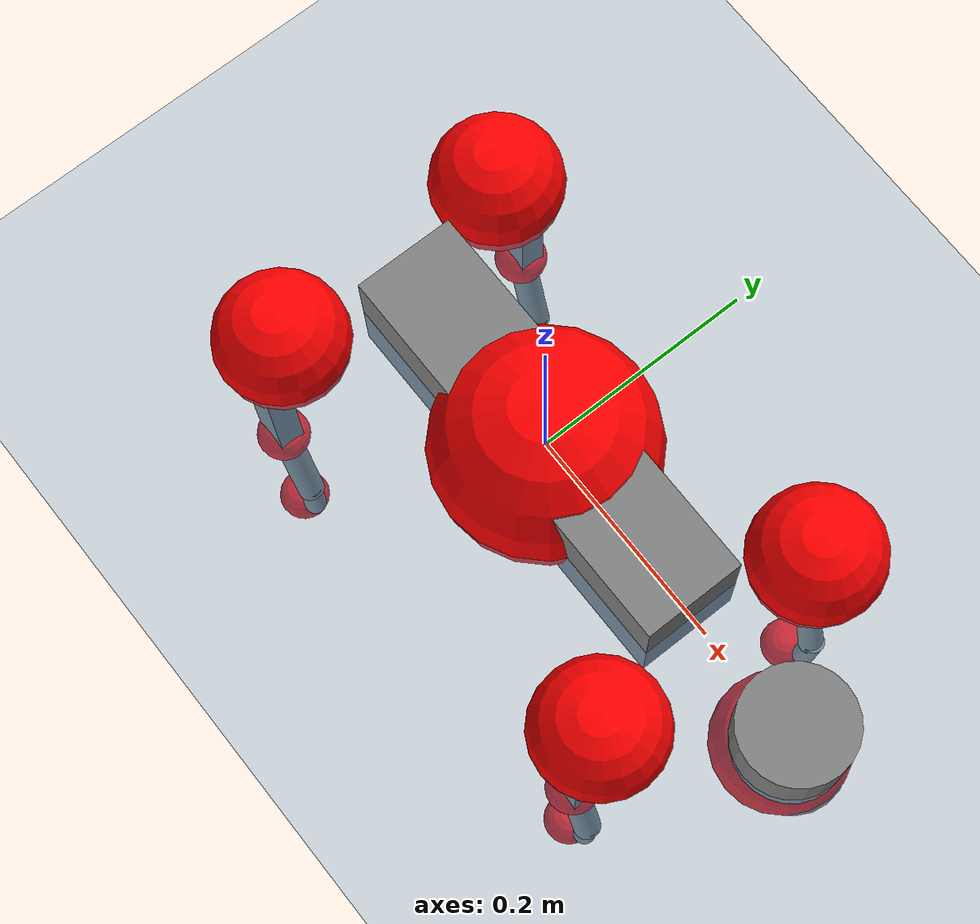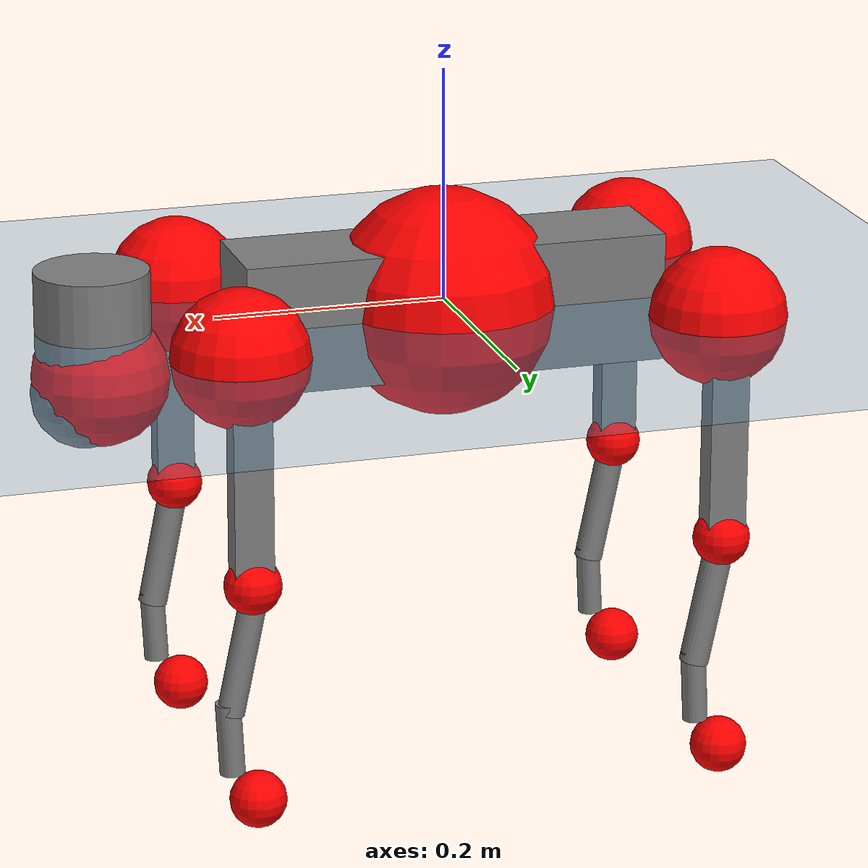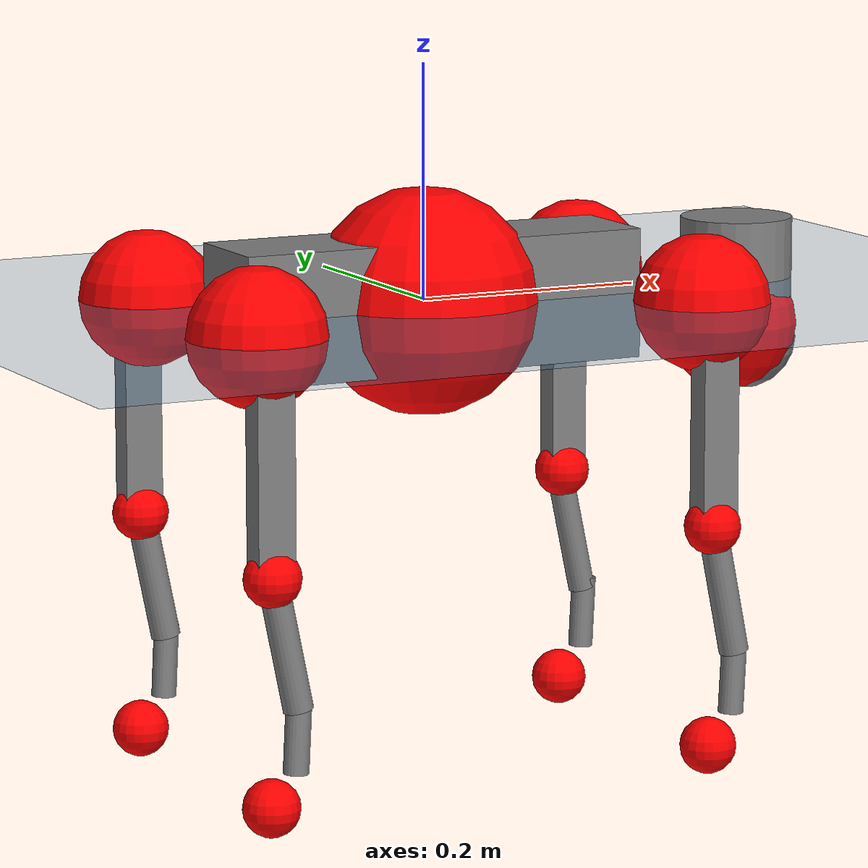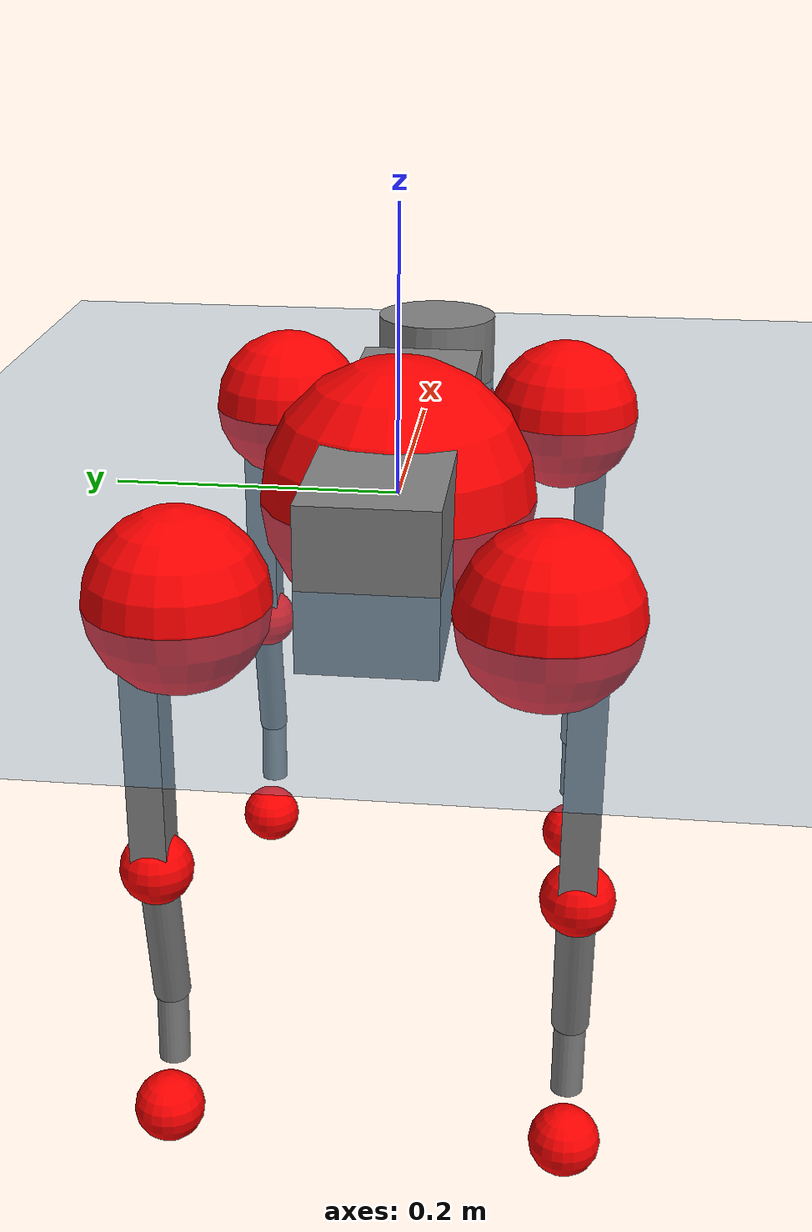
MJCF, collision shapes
<mujoco model="go2">
  <compiler angle="radian" assetdir="assets" balanceinertia="true" inertiafromgeom="false"/>

  <option timestep="0.005" density="1.2" viscosity="2e-05"/>

  <size nkey="1"/>

  <visual>
    <quality shadowsize="8192"/>
    <map shadowclip="0.5"/>
  </visual>

  <default>
    <default class="/">
      <geom contype="0" conaffinity="0" group="1" solref="-1000 -80"/>
      <site size="0.01 0.005 0.005" group="5"/>
      <general forcelimited="true" biastype="affine" gainprm="20" biasprm="0 -20 -0.5"/>
      <default class="go2">
        <joint armature="0.01" damping="0.01" frictionloss="0.2"/>
        <geom condim="1" margin="0.001"/>
        <default class="visual">
          <geom type="mesh" group="2"/>
        </default>
        <default class="collision">
          <geom group="3"/>
          <default class="foot">
            <geom size="0.022 0 0" condim="6" priority="1" friction="0.8 0.02 0.01" solimp="0.015 1 0.022"/>
          </default>
        </default>
        <default class="reward_collision_sphere">
          <geom group="5" rgba="1 0 0 1"/>
        </default>
      </default>
    </default>
  </default>

  <asset>
    <texture type="skybox" colorspace="auto" name="//unnamed_texture_0" builtin="gradient" rgb1="0.95 0.95 0.95" rgb2="0.95 0.95 0.95" width="100" height="600"/>
    <texture type="2d" colorspace="auto" name="texplane" builtin="checker" rgb1="0.345 0.575 0.748" rgb2="0.345 0.575 0.748" markrgb="1 1 1" width="512" height="512"/>
    <material name="MatPlane" class="/" texture="texplane" texuniform="true" texrepeat="2 2" specular="0.9"/>
    <material name="metal" class="/" rgba="0.9 0.95 0.95 1"/>
    <material name="black" class="/" rgba="0 0 0 1"/>
    <material name="white" class="/"/>
    <material name="gray" class="/" rgba="0.671705 0.692426 0.77427 1"/>
    <mesh name="base_0" class="/" file="base_0.obj"/>
    <mesh name="base_1" class="/" file="base_1.obj"/>
    <mesh name="base_2" class="/" file="base_2.obj"/>
    <mesh name="base_3" class="/" file="base_3.obj"/>
    <mesh name="base_4" class="/" file="base_4.obj"/>
    <mesh name="hip_0" class="/" file="hip_0.obj"/>
    <mesh name="hip_1" class="/" file="hip_1.obj"/>
    <mesh name="thigh_0" class="/" file="thigh_0.obj"/>
    <mesh name="thigh_1" class="/" file="thigh_1.obj"/>
    <mesh name="thigh_mirror_0" class="/" file="thigh_mirror_0.obj"/>
    <mesh name="thigh_mirror_1" class="/" file="thigh_mirror_1.obj"/>
    <mesh name="calf_0" class="/" file="calf_0.obj"/>
    <mesh name="calf_1" class="/" file="calf_1.obj"/>
    <mesh name="calf_mirror_0" class="/" file="calf_mirror_0.obj"/>
    <mesh name="calf_mirror_1" class="/" file="calf_mirror_1.obj"/>
    <mesh name="foot" class="/" file="foot.obj"/>
  </asset>

  <worldbody>
    <geom name="floor" class="/" size="100 100 0.125" type="plane" group="0" material="MatPlane"/>
    <light name="toplight_shadow" class="/" pos="0 0 5" dir="0.0990148 0.0990148 -0.990148" type="directional" ambient="0.04 0.04 0.04" diffuse="0.55 0.55 0.55" specular="0.12 0.12 0.12"/>
    <light name="toplight_fill" class="/" pos="0 0 5" dir="0.0990148 0.0990148 -0.990148" type="directional" castshadow="false" ambient="0.04 0.04 0.04" diffuse="0.3 0.3 0.3" specular="0.08 0.08 0.08"/>
    <body name="trunk" childclass="go2" pos="0.000318776 0.000111953 -0.000982938" quat="1 0.000289342 -4.58169e-05 -3.82445e-05">
      <inertial pos="0.0229505 0.000246556 -0.00497143" quat="-0.00176467 0.712373 -0.00278125 0.701794" mass="6.48123" diaginertia="0.147861 0.078059 0.0142889"/>
      <joint name="//unnamed_joint_0" type="free" armature="0" damping="0" frictionloss="0"/>
      <geom name="//unnamed_geom_1" class="visual" material="black" mesh="base_0"/>
      <geom name="//unnamed_geom_2" class="visual" material="black" mesh="base_1"/>
      <geom name="//unnamed_geom_3" class="visual" material="black" mesh="base_2"/>
      <geom name="//unnamed_geom_4" class="visual" material="white" mesh="base_3"/>
      <geom name="//unnamed_geom_5" class="visual" material="gray" mesh="base_4"/>
      <geom name="trunk_1" class="collision" size="0.182721 0.0454131 0.05537" type="box"/>
      <geom name="trunk_2" class="collision" size="0.0485702 0.0437132" pos="0.303334 0 0.00896168" type="cylinder"/>
      <geom name="trunk_3" class="collision" size="0.045656" pos="0.311849 0 -0.0537701"/>
      <geom name="//unnamed_geom_9" class="reward_collision_sphere" size="0.0971404"/>
      <geom name="//unnamed_geom_10" class="reward_collision_sphere" size="0.0582842" pos="0.298013 0 -0.0403275"/>
      <site name="imu" pos="-0.0247088 -0.00460384 0.0396654" size="0.00971404"/>
      <camera name="track" pos="0 -1.90743 0" quat="0.707107 0.707107 0 0" mode="trackcom"/>
      <camera name="ego_camera" pos="0.332071 0 0.0403275" quat="-0.5 -0.5 0.5 0.5"/>
      <body name="FL_hip" pos="0.205256 0.0434427 0.000919219" quat="1 -7.29487e-05 0.00013354 0.000194069">
        <inertial pos="-0.00583113 0.00205769 -0.00154121" quat="0.496897 0.499335 0.502361 0.501389" mass="0.627782" diaginertia="0.00121305 0.000475433 0.000280458"/>
        <joint name="FL_hip_joint" pos="0 0 0" axis="0.999998 -0.00199107 -6.13744e-05" stiffness="0.000316629" range="-1.04807 1.031" armature="0.00974213" damping="0.00624434" frictionloss="0.18536"/>
        <geom name="//unnamed_geom_11" class="visual" material="metal" mesh="hip_0"/>
        <geom name="//unnamed_geom_12" class="visual" material="gray" mesh="hip_1"/>
        <geom name="//unnamed_geom_13" class="collision" size="0.0446846 0.0194281" pos="0 0.0762971 0" quat="0.707107 0.707107 0 0" type="cylinder"/>
        <geom name="//unnamed_geom_14" class="reward_collision_sphere" size="0.0582842" pos="0 0.0667599 0"/>
        <body name="FL_thigh" pos="-0.000628926 0.0899715 0.00191158" quat="1 3.88085e-05 -0.000102267 -0.000218093">
          <inertial pos="-0.00376984 -0.0210741 -0.0287694" quat="0.829176 0.0851095 -0.0201258 0.552104" mass="1.05895" diaginertia="0.0081589 0.00460327 0.000508368"/>
          <joint name="FL_thigh_joint" pos="0 0 0" axis="0.00761174 0.999968 -0.00252541" stiffness="0.00244745" range="-1.5513 3.48844" armature="0.00996603" damping="0.00449242" frictionloss="0.194605"/>
          <geom name="//unnamed_geom_15" class="visual" material="metal" mesh="thigh_0"/>
          <geom name="//unnamed_geom_16" class="visual" material="gray" mesh="thigh_1"/>
          <geom name="//unnamed_geom_17" class="collision" size="0.103454 0.0118997 0.0165139" pos="0 0 -0.0954418" quat="0.707107 0 0.707107 0" type="box"/>
          <body name="FL_calf" pos="-0.00097261 -0.000242854 -0.190596" quat="1 1.57207e-06 9.0261e-05 -4.20311e-05">
            <inertial pos="0.00535656 -0.00109884 -0.126515" quat="0.709829 0.000739164 -0.00385281 0.704363" mass="0.22257" diaginertia="0.00202958 0.00115965 3.07621e-05"/>
            <joint name="FL_calf_joint" pos="0 0 0" axis="-0.00059256 0.999998 -0.0017102" stiffness="0.00581105" range="-2.75252 -0.855558" armature="0.00952068" damping="0.00947432" frictionloss="0.20538"/>
            <geom name="//unnamed_geom_18" class="visual" material="gray" mesh="calf_0"/>
            <geom name="//unnamed_geom_19" class="visual" material="black" mesh="calf_1"/>
            <geom name="FL_calf0" class="collision" size="0.0116568 0.0582842" pos="0.00851464 0 -0.0537701" quat="0.994493 0 -0.104807 0" type="cylinder"/>
            <geom name="//unnamed_geom_21" class="collision" size="0.0106854 0.0315706" pos="0.0212866 0 -0.132633" quat="0.999688 0 0.0249974 0" type="cylinder"/>
            <geom name="//unnamed_geom_22" class="visual" pos="0 0 -0.190884" quat="1 0 0 0" material="black" mesh="foot"/>
            <geom name="FL_foot" class="foot" size="0.0175387" pos="-0.00212866 0 -0.190884"/>
            <geom name="//unnamed_geom_24" class="reward_collision_sphere" size="0.0242851"/>
            <geom name="//unnamed_geom_25" class="reward_collision_sphere" size="0.0242851" pos="-0.00212866 0 -0.190884"/>
            <site name="FL_foot" class="foot" pos="-0.00212866 0 -0.190884" size="0.00971404"/>
          </body>
        </body>
      </body>
      <body name="FR_hip" pos="0.206341 -0.0441626 -0.000318251" quat="1 8.93416e-06 -0.000664212 -0.000108204">
        <inertial pos="-0.00539272 -0.00158029 -0.000745302" quat="0.498801 0.503471 0.496576 0.501125" mass="0.630504" diaginertia="0.00121652 0.000471033 0.000279178"/>
        <joint name="FR_hip_joint" pos="0 0 0" axis="0.999997 -0.00148601 -0.00169973" range="-1.06712 1.06846" armature="0.00982796" damping="0.0136097" frictionloss="0.186339"/>
        <geom name="//unnamed_geom_26" class="visual" pos="0 5.01315e-10 2.15024e-08" quat="4.63268e-05 1 0 0" material="metal" mesh="hip_0"/>
        <geom name="//unnamed_geom_27" class="visual" pos="0 8.12691e-10 -5.31837e-08" quat="4.63268e-05 1 0 0" material="gray" mesh="hip_1"/>
        <geom name="//unnamed_geom_28" class="collision" size="0.0446846 0.0194281" pos="0 -0.0762971 0" quat="0.707107 0.707107 0 0" type="cylinder"/>
        <geom name="//unnamed_geom_29" class="reward_collision_sphere" size="0.0582842" pos="0 -0.0667599 0"/>
        <body name="FR_thigh" pos="0.00010066 -0.090237 0.00200117" quat="1 0.000293519 0.000162517 -0.000154333">
          <inertial pos="-0.00387817 0.0211025 -0.0286582" quat="0.551515 -0.0197562 0.0844938 0.82964" mass="1.04935" diaginertia="0.00808729 0.00461519 0.000502609"/>
          <joint name="FR_thigh_joint" pos="0 0 0" axis="-0.00438204 -0.999986 0.00307143" stiffness="0.000625282" range="-3.49085 1.58798" armature="0.0100992" damping="0.00693726" frictionloss="0.197414"/>
          <geom name="//unnamed_geom_30" class="visual" material="metal" mesh="thigh_mirror_0"/>
          <geom name="//unnamed_geom_31" class="visual" material="gray" mesh="thigh_mirror_1"/>
          <geom name="//unnamed_geom_32" class="collision" size="0.103454 0.0118997 0.0165139" pos="0 0 -0.0954418" quat="0.707107 0 0.707107 0" type="box"/>
          <body name="FR_calf" pos="-0.000850464 0.000323162 -0.190845" quat="1 0.000243496 2.65564e-05 -1.49015e-05">
            <inertial pos="0.00626148 0.000294971 -0.127059" quat="0.700832 -0.00448375 -0.00337594 0.713304" mass="0.218508" diaginertia="0.00202908 0.00115035 3.0848e-05"/>
            <joint name="FR_calf_joint" pos="0 0 0" axis="-0.000914697 -0.999999 -0.00106661" range="0.837407 2.72293" armature="0.00965453" damping="0.00541321" frictionloss="0.202965"/>
            <geom name="//unnamed_geom_33" class="visual" material="gray" mesh="calf_mirror_0"/>
            <geom name="//unnamed_geom_34" class="visual" material="black" mesh="calf_mirror_1"/>
            <geom name="FR_calf0" class="collision" size="0.0126282 0.0582842" pos="0.0106433 0 -0.0537701" quat="0.995004 0 -0.0998334 0" type="cylinder"/>
            <geom name="//unnamed_geom_36" class="collision" size="0.0106854 0.0315706" pos="0.0212866 0 -0.132633" quat="0.999688 0 0.0249974 0" type="cylinder"/>
            <geom name="//unnamed_geom_37" class="visual" pos="0 0 -0.190884" quat="1 0 0 0" material="black" mesh="foot"/>
            <geom name="FR_foot" class="foot" size="0.0213294" pos="-0.00212866 0 -0.190884"/>
            <geom name="//unnamed_geom_39" class="reward_collision_sphere" size="0.0242851"/>
            <geom name="//unnamed_geom_40" class="reward_collision_sphere" size="0.0242851" pos="-0.00212866 0 -0.190884"/>
            <site name="FR_foot" class="foot" pos="-0.00212866 0 -0.190884" size="0.00971404"/>
          </body>
        </body>
      </body>
      <body name="RL_hip" pos="-0.206271 0.0449675 0.000832381" quat="1 -1.3513e-05 -5.43516e-05 -9.4946e-05">
        <inertial pos="0.0057149 0.00206615 -0.000946887" quat="0.506858 0.496047 0.496704 0.500317" mass="0.627343" diaginertia="0.00123459 0.00047211 0.000282034"/>
        <joint name="RL_hip_joint" pos="0 0 0" axis="-0.9998 0.0166713 -0.0110247" stiffness="0.00359866" range="-1.05247 1.05516" armature="0.00971967" damping="0.0122368" frictionloss="0.195706"/>
        <geom name="//unnamed_geom_41" class="visual" pos="-1.46497e-09 0 -2.87167e-07" quat="4.63268e-05 0 1 0" material="metal" mesh="hip_0"/>
        <geom name="//unnamed_geom_42" class="visual" pos="-2.37488e-09 0 -2.54676e-07" quat="4.63268e-05 0 1 0" material="gray" mesh="hip_1"/>
        <geom name="//unnamed_geom_43" class="collision" size="0.0446846 0.0194281" pos="0 0.0762971 0" quat="0.707107 0.707107 0 0" type="cylinder"/>
        <geom name="//unnamed_geom_44" class="reward_collision_sphere" size="0.0582842" pos="0 0.0667599 0"/>
        <body name="RL_thigh" pos="0.000565002 0.0901089 0.000940916" quat="1 0.00021556 0.000110792 0.000121341">
          <inertial pos="-0.00263781 -0.0204871 -0.0304581" quat="0.829543 0.0848171 -0.0201447 0.551596" mass="1.07879" diaginertia="0.00833158 0.00471529 0.00051228"/>
          <joint name="RL_thigh_joint" pos="0 0 0" axis="-0.00741205 0.999948 0.00702824" range="-0.507014 4.53452" armature="0.0096202" damping="0.00100711" frictionloss="0.186522"/>
          <geom name="//unnamed_geom_45" class="visual" material="metal" mesh="thigh_0"/>
          <geom name="//unnamed_geom_46" class="visual" material="gray" mesh="thigh_1"/>
          <geom name="//unnamed_geom_47" class="collision" size="0.103454 0.0118997 0.0165139" pos="0 0 -0.0954418" quat="0.707107 0 0.707107 0" type="box"/>
          <body name="RL_calf" pos="0.000147761 -0.00122677 -0.190577" quat="1 -0.000150802 0.000217196 7.86886e-05">
            <inertial pos="0.00578418 -0.000988509 -0.127961" quat="0.711871 0.000559914 -0.00394238 0.702299" mass="0.222111" diaginertia="0.00204981 0.00117721 3.06844e-05"/>
            <joint name="RL_calf_joint" pos="0 0 0" axis="0.00307522 0.99995 0.00952581" range="-2.71314 -0.864779" armature="0.00988297" damping="0" frictionloss="0.195785"/>
            <geom name="//unnamed_geom_48" class="visual" material="gray" mesh="calf_0"/>
            <geom name="//unnamed_geom_49" class="visual" material="black" mesh="calf_1"/>
            <geom name="RL_calf0" class="collision" size="0.0126282 0.0582842" pos="0.0106433 0 -0.0537701" quat="0.995004 0 -0.0998334 0" type="cylinder"/>
            <geom name="//unnamed_geom_51" class="collision" size="0.0106854 0.0315706" pos="0.0212866 0 -0.132633" quat="0.999688 0 0.0249974 0" type="cylinder"/>
            <geom name="//unnamed_geom_52" class="visual" pos="0 0 -0.190884" quat="1 0 0 0" material="black" mesh="foot"/>
            <geom name="RL_foot" class="foot" size="0.0189233" pos="-0.00212866 0 -0.190884"/>
            <geom name="//unnamed_geom_54" class="reward_collision_sphere" size="0.0242851"/>
            <geom name="//unnamed_geom_55" class="reward_collision_sphere" size="0.0242851" pos="-0.00212866 0 -0.190884"/>
            <site name="RL_foot" class="foot" pos="-0.00212866 0 -0.190884" size="0.00971404"/>
          </body>
        </body>
      </body>
      <body name="RR_hip" pos="-0.204852 -0.0452009 0.000997536" quat="1 -3.17957e-05 -0.000124806 0.000152499">
        <inertial pos="0.00601224 -0.00100525 7.72524e-05" quat="0.497918 0.496423 0.500182 0.50543" mass="0.618071" diaginertia="0.00123312 0.00047569 0.000277608"/>
        <joint name="RR_hip_joint" pos="0 0 0" axis="-0.999978 0.00659198 0.000584051" range="-1.03168 1.04704" armature="0.00974046" damping="0.00101797" frictionloss="0.206718"/>
        <geom name="//unnamed_geom_56" class="visual" pos="1.46114e-09 5.01315e-10 -3.08669e-07" quat="2.14617e-09 4.63268e-05 4.63268e-05 -1" material="metal" mesh="hip_0"/>
        <geom name="//unnamed_geom_57" class="visual" pos="2.38436e-09 8.12691e-10 -2.01493e-07" quat="2.14617e-09 4.63268e-05 4.63268e-05 -1" material="gray" mesh="hip_1"/>
        <geom name="//unnamed_geom_58" class="collision" size="0.0446846 0.0194281" pos="0 -0.0762971 0" quat="0.707107 0.707107 0 0" type="cylinder"/>
        <geom name="//unnamed_geom_59" class="reward_collision_sphere" size="0.0582842" pos="0 -0.0667599 0"/>
        <body name="RR_thigh" pos="-0.000308819 -0.0919179 -0.00146301" quat="1 -0.000401516 -0.000106067 -0.000159714">
          <inertial pos="-0.0035121 0.0221145 -0.0307471" quat="0.553597 -0.0180665 0.0870964 0.828021" mass="1.04148" diaginertia="0.00814516 0.00460259 0.00051086"/>
          <joint name="RR_thigh_joint" pos="0 0 0" axis="-0.000239566 -1 0.000818621" range="-4.53924 0.533084" armature="0.00983281" damping="0.0221547" frictionloss="0.192414"/>
          <geom name="//unnamed_geom_60" class="visual" material="metal" mesh="thigh_mirror_0"/>
          <geom name="//unnamed_geom_61" class="visual" material="gray" mesh="thigh_mirror_1"/>
          <geom name="//unnamed_geom_62" class="collision" size="0.103454 0.0118997 0.0165139" pos="0 0 -0.0954418" quat="0.707107 0 0.707107 0" type="box"/>
          <body name="RR_calf" pos="0.00051822 -0.000472781 -0.192131" quat="1 -0.000164563 0.000537909 -0.000188178">
            <inertial pos="0.00649057 0.000845674 -0.126984" quat="0.70239 -0.00331314 0.000213763 0.711785" mass="0.217398" diaginertia="0.00199996 0.00112865 3.01379e-05"/>
            <joint name="RR_calf_joint" pos="0 0 0" axis="-0.00901384 -0.999959 -0.000636338" range="0.842011 2.72038" armature="0.00981163" damping="0.00687467" frictionloss="0.193229"/>
            <geom name="//unnamed_geom_63" class="visual" material="gray" mesh="calf_mirror_0"/>
            <geom name="//unnamed_geom_64" class="visual" material="black" mesh="calf_mirror_1"/>
            <geom name="RR_calf0" class="collision" size="0.0126282 0.0582842" pos="0.0106433 0 -0.0537701" quat="0.995004 0 -0.0998334 0" type="cylinder"/>
            <geom name="//unnamed_geom_66" class="collision" size="0.0106854 0.0315706" pos="0.0212866 0 -0.132633" quat="0.999688 0 0.0249974 0" type="cylinder"/>
            <geom name="//unnamed_geom_67" class="visual" pos="0 0 -0.190884" quat="1 0 0 0" material="black" mesh="foot"/>
            <geom name="RR_foot" class="foot" size="0.0225949" pos="-0.00212866 0 -0.190884"/>
            <geom name="//unnamed_geom_69" class="reward_collision_sphere" size="0.0242851"/>
            <geom name="//unnamed_geom_70" class="reward_collision_sphere" size="0.0242851" pos="-0.00212866 0 -0.190884"/>
            <site name="RR_foot" class="foot" pos="-0.00212866 0 -0.190884" size="0.00971404"/>
          </body>
        </body>
      </body>
    </body>
  </worldbody>

  <contact>
    <pair class="/" geom1="floor" geom2="FL_foot" name="//unnamed_contact_0"/>
    <pair class="/" geom1="floor" geom2="FR_foot" name="//unnamed_contact_1"/>
    <pair class="/" geom1="floor" geom2="RL_foot" name="//unnamed_contact_2"/>
    <pair class="/" geom1="floor" geom2="RR_foot" name="//unnamed_contact_3"/>
  </contact>

  <actuator>
    <general name="FL_hip" class="/" joint="FL_hip_joint" forcerange="-23.1147 23.1147" gainprm="19.7361" biasprm="0 -19.7361 -0.488221"/>
    <general name="FL_thigh" class="/" joint="FL_thigh_joint" forcerange="-23.4484 23.4484" gainprm="19.7361" biasprm="0 -19.7361 -0.488221"/>
    <general name="FL_calf" class="/" joint="FL_calf_joint" forcerange="-42.429 42.429" gainprm="19.7361" biasprm="0 -19.7361 -0.488221"/>
    <general name="FR_hip" class="/" joint="FR_hip_joint" forcerange="-22.522 22.522" gainprm="19.7361" biasprm="0 -19.7361 -0.488221"/>
    <general name="FR_thigh" class="/" joint="FR_thigh_joint" forcerange="-22.1586 22.1586" gainprm="19.7361" biasprm="0 -19.7361 -0.488221"/>
    <general name="FR_calf" class="/" joint="FR_calf_joint" forcerange="-43.5657 43.5657" gainprm="19.7361" biasprm="0 -19.7361 -0.488221"/>
    <general name="RL_hip" class="/" joint="RL_hip_joint" forcerange="-22.9263 22.9263" gainprm="19.7361" biasprm="0 -19.7361 -0.488221"/>
    <general name="RL_thigh" class="/" joint="RL_thigh_joint" forcerange="-22.2907 22.2907" gainprm="19.7361" biasprm="0 -19.7361 -0.488221"/>
    <general name="RL_calf" class="/" joint="RL_calf_joint" forcerange="-44.6448 44.6448" gainprm="19.7361" biasprm="0 -19.7361 -0.488221"/>
    <general name="RR_hip" class="/" joint="RR_hip_joint" forcerange="-22.9546 22.9546" gainprm="19.7361" biasprm="0 -19.7361 -0.488221"/>
    <general name="RR_thigh" class="/" joint="RR_thigh_joint" forcerange="-23.3407 23.3407" gainprm="19.7361" biasprm="0 -19.7361 -0.488221"/>
    <general name="RR_calf" class="/" joint="RR_calf_joint" forcerange="-42.8439 42.8439" gainprm="19.7361" biasprm="0 -19.7361 -0.488221"/>
  </actuator>

  <sensor>
    <gyro site="imu" name="imu_angular_velocity"/>
    <velocimeter site="imu" name="imu_linear_velocity"/>
    <framelinvel objtype="site" objname="FL_foot" name="FL_foot_global_linear_velocity"/>
    <framelinvel objtype="site" objname="FR_foot" name="FR_foot_global_linear_velocity"/>
    <framelinvel objtype="site" objname="RL_foot" name="RL_foot_global_linear_velocity"/>
    <framelinvel objtype="site" objname="RR_foot" name="RR_foot_global_linear_velocity"/>
  </sensor>

  <keyframe>
    <key name="home" qpos="0 0 0.325 1 0 0 0 0.1 0.8 -1.5 -0.1 -0.8 1.5 -0.1 0.8 -1.5 0.1 -0.8 1.5"/>
  </keyframe>
</mujoco>
